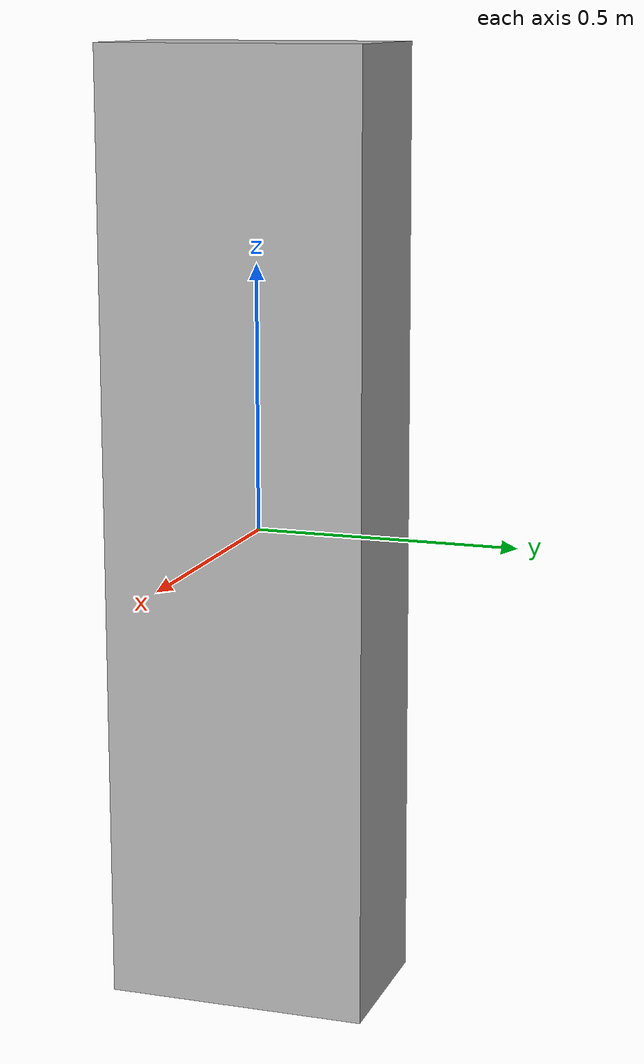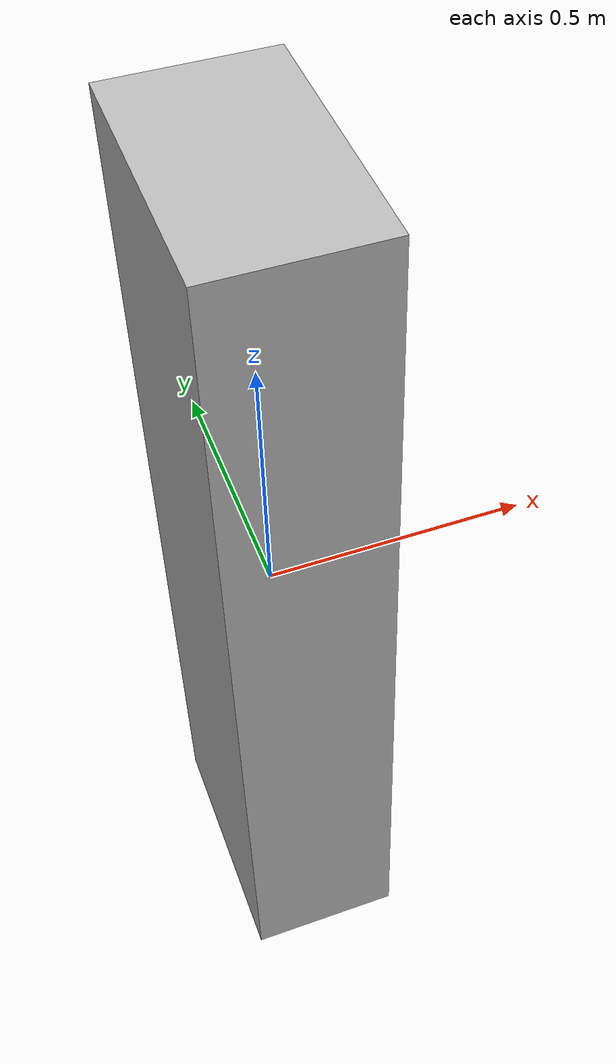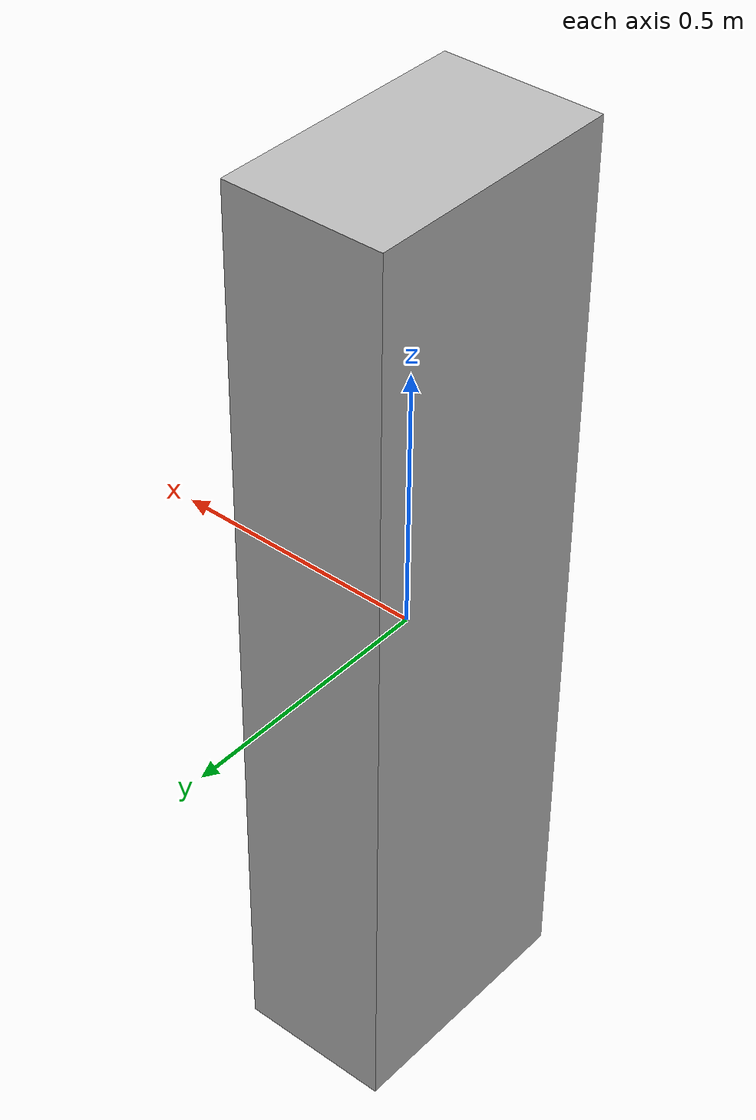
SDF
<?xml version='1.0'?>
<sdf version='1.6'>
    <model name="obstacle1">
      <link name="link">
        <collision name="collision">
          <geometry>
            <box>
              <size>0.3 0.5 1.8</size>
            </box>
          </geometry>
        </collision>

        <visual name="visual">
          <geometry>
            <box>
              <size>0.3 0.5 1.8</size>
            </box>
          </geometry>
        </visual>
      </link>
    </model>
</sdf>
